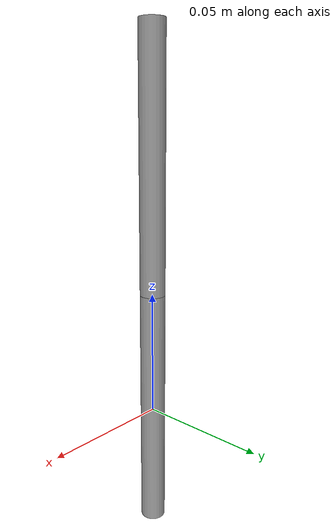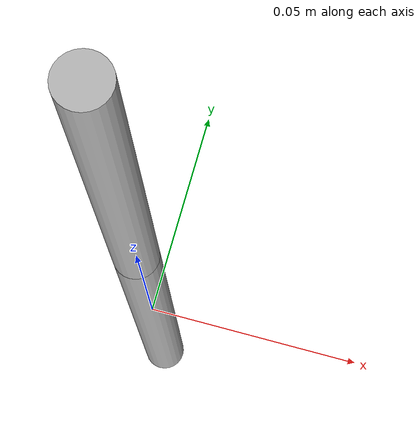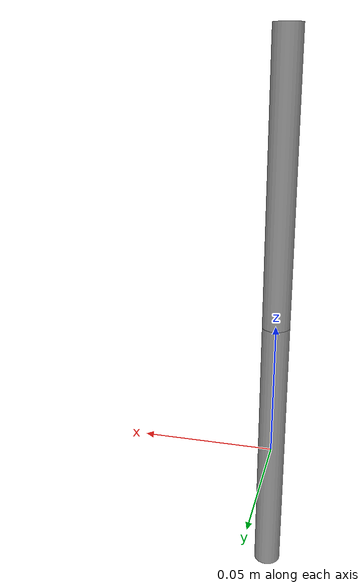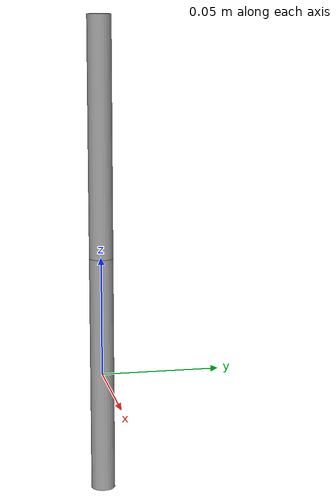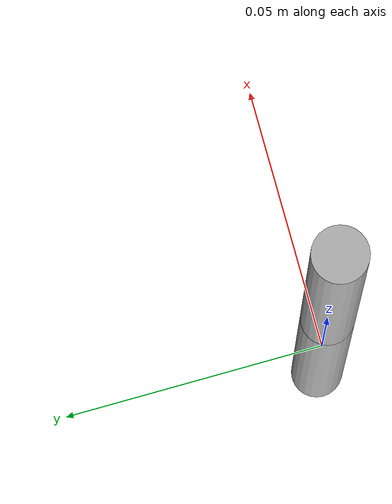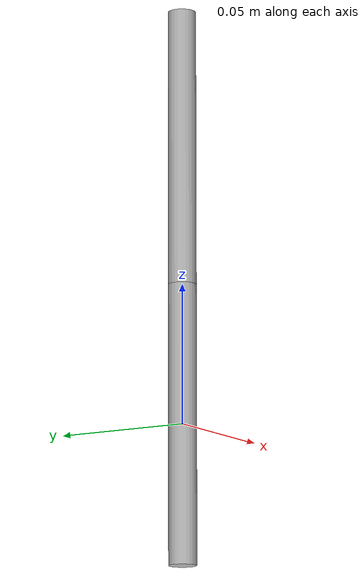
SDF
<?xml version="1.0" ?>
<sdf version="1.5">
  <model name="cable">
    <link name="1_point">
      <inertial>
        <mass>0.1</mass>
        <inertia>
          <ixx>0.000166667</ixx>
          <iyy>0.000166667</iyy>
          <izz>0.000166667</izz>
        </inertia>
      </inertial>
      <collision name="collision_00">
        <geometry>
          <cylinder>
            <radius>0.005</radius>
            <length>0.1</length>
          </cylinder>
        </geometry>
      </collision>
      <visual name="visual_00">
        <geometry>
          <cylinder>
            <radius>0.005</radius>
            <length>0.1</length>
          </cylinder>
        </geometry>
      </visual>
      <gravity>1</gravity>
    </link>

    <joint name="joint_1" type="revolute">
      <parent>1_point</parent>
      <child>second_point::2_point</child>
      <pose>0.0 0.0 0.0 0.0 0.0 0.0</pose>
    </joint>

    <model name="second_point">
      <link name="2_point">
        <pose>0.0 0.0 0.1 0 0 0</pose>
        <gravity>1</gravity>
        <inertial>
          <mass>0.1</mass>
          <inertia>
            <ixx>0.000166667</ixx>
            <iyy>0.000166667</iyy>
            <izz>0.000166667</izz>
          </inertia>
        </inertial>
        <collision name="collision_00">
          <geometry>
            <cylinder>
              <radius>0.005</radius>
              <length>0.1</length>
            </cylinder>
          </geometry>
        </collision>
        <visual name="visual_00">
          <geometry>
            <cylinder>
              <radius>0.005</radius>
              <length>0.1</length>
            </cylinder>
          </geometry>
        </visual>

      </link>
    </model>

  </model>
</sdf>
